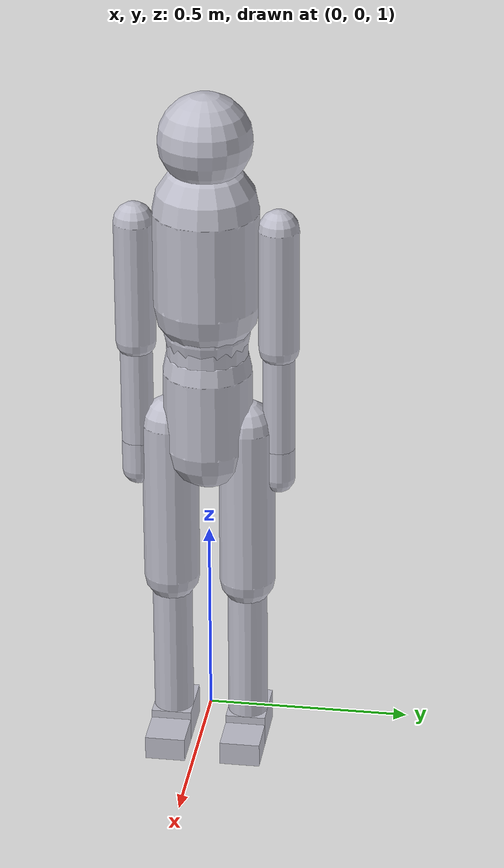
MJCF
<mujoco model="mma_humanoid_base">

  <compiler angle="degree" autolimits="true" inertiafromgeom="true"/>
  <option timestep="0.002083" gravity="0 0 -9.81" iterations="50" solver="Newton"/>

  <default>
    <default class="mma_humanoid">
      <joint damping="15" armature="0.02" limited="true" frictionloss="0.5"/>
      <!-- contype=2 conaffinity=3 → collides with world (bit 0) and self (bit 1) -->
      <geom contype="2" conaffinity="3" condim="4" friction="0.8 0.01 0.001" rgba="0.75 0.75 0.8 1"/>
      <site group="4" size="0.025" rgba="0 1 0 0.4"/>
    </default>
    <default class="strike_site">
      <site group="3" size="0.04" rgba="1 0.1 0.1 0.6"/>
    </default>
    <default class="grip_site">
      <site group="4" size="0.03" rgba="0.1 0.6 1 0.6"/>
    </default>
  </default>

  <worldbody>

    <body name="torso_lower" pos="0 0 1.84">
      <freejoint name="root"/>

      <!-- Pelvis + abdomen: mass ~22.4 kg (28% BM), capsule along local Z -->
      <geom name="pelvis" class="mma_humanoid" type="capsule"
            size="0.11 0.10" euler="0 0 0" mass="22.4"/>

      <!-- ── Spine chain: each joint on its own body ──────────────────────── -->
      <body name="torso_mid" pos="0 0 0.13">
        <!-- spine_twist: axial rotation — 28th DOF -->
        <joint name="spine_twist" type="hinge" axis="0 0 1" range="-30 30"
               damping="25" class="mma_humanoid"/>
        <!-- spine_lower: lateral bend -->
        <joint name="spine_lower" type="hinge" axis="0 1 0" range="-30 30"
               damping="25" class="mma_humanoid"/>
        <!-- structural link — mass consolidated into pelvis/thorax -->
        <geom name="abdomen" class="mma_humanoid" type="capsule"
              size="0.10 0.06" euler="0 0 0" mass="0.5"/>

        <body name="torso_upper_mid" pos="0 0 0.13">
          <!-- spine_mid: forward/back flex -->
          <joint name="spine_mid" type="hinge" axis="1 0 0" range="-25 25"
                 damping="20" class="mma_humanoid"/>
          <!-- structural link — mass consolidated into pelvis/thorax -->
          <geom name="lower_chest" class="mma_humanoid" type="capsule"
                size="0.105 0.06" euler="0 0 0" mass="0.5"/>

          <!-- ── Upper Torso (Thorax) ──────────────────────────────────────── -->
          <body name="torso_upper" pos="0 0 0.14">
            <!-- spine_upper: subtle rotation assist -->
            <joint name="spine_upper" type="hinge" axis="0 0 1" range="-20 20"
                   damping="15" class="mma_humanoid"/>
            <!-- Thorax: absorbs mass from structural abdomen/lower_chest links → 18.0 kg -->
            <geom name="thorax" class="mma_humanoid" type="capsule"
                  size="0.13 0.12" euler="0 0 0" mass="18.0"/>

            <site name="site_solar_plexus" pos="0 0.14 -0.05" class="strike_site"/>
            <site name="site_liver"        pos="-0.09 0.10 -0.05" class="strike_site"/>

            <!-- ── Neck chain ──────────────────────────────────────────────── -->
            <body name="neck" pos="0 0 0.20">
              <joint name="neck_pan" type="hinge" axis="0 0 1" range="-70 70"
                     damping="8" class="mma_humanoid"/>
              <!-- Neck: mass ~1.2 kg -->
              <geom name="neck_geom" class="mma_humanoid" type="capsule"
                    size="0.05 0.04" euler="0 0 0" mass="1.2"/>

              <body name="head" pos="0 0 0.10">
                <joint name="neck_tilt"    type="hinge" axis="1 0 0" range="-40 45"
                       damping="8" class="mma_humanoid"/>
                <!-- lateral flex: ear-to-shoulder, essential for slipping punches -->
                <joint name="neck_lateral" type="hinge" axis="0 1 0" range="-30 30"
                       damping="8" class="mma_humanoid"/>
                <!-- Head: mass ~6.4 kg (8% BM), sphere r=0.115 -->
                <geom name="head_geom" class="mma_humanoid" type="sphere"
                      size="0.115" mass="6.4"/>
                <site name="site_head"     pos="0 0 0"         class="strike_site"/>
                <site name="site_jaw"      pos="0 0.10 -0.07"  class="strike_site"/>
                <site name="site_temple_L" pos="-0.10 0 0.02"  class="strike_site"/>
                <site name="site_temple_R" pos="0.10 0 0.02"   class="strike_site"/>
              </body>
            </body>

            <body name="upper_arm_L" pos="0 0.175 0.08">
              <joint name="shoulder_x_L" type="hinge" axis="1 0 0" range="-180 60"
                     damping="10" class="mma_humanoid"/>
              <joint name="shoulder_y_L" type="hinge" axis="0 1 0" range="-90 135"
                     damping="10" class="mma_humanoid"/>
              <joint name="shoulder_z_L" type="hinge" axis="0 0 1" range="-90 90"
                     damping="8"  class="mma_humanoid"/>
              <!-- Capsule along +Y (arm hangs down in anatomical neutral) -->
              <geom name="upper_arm_geom_L" class="mma_humanoid" type="capsule"
                    size="0.05 0.155" fromto="0 0 0  0 0 -0.31" mass="1.96"/>

              <body name="forearm_L" pos="0 0 -0.31">
                <joint name="elbow_flexion_L" type="hinge" axis="1 0 0" range="0 145"
                       damping="8" class="mma_humanoid"/>
                <!-- pronation/supination: knuckle-over at punch impact -->
                <joint name="forearm_twist_L" type="hinge" axis="0 0 1" range="-90 90"
                       damping="5" class="mma_humanoid"/>
                <geom name="forearm_geom_L" class="mma_humanoid" type="capsule"
                      size="0.04 0.135" fromto="0 0 0  0 0 -0.27" mass="1.28"/>

                <body name="hand_L" pos="0 0 -0.27">
                  <joint name="wrist_x_L" type="hinge" axis="1 0 0" range="-70 70"
                         damping="5" class="mma_humanoid"/>
                  <geom name="hand_geom_L" class="mma_humanoid" type="capsule"
                        size="0.04 0.04" fromto="0 0 0  0 0 -0.08" mass="0.48"/>
                  <site name="site_hand_L" pos="0 0 -0.06" class="grip_site"/>
                </body>
              </body>
            </body>

            <!-- ══════════════════════════════════════════════════════════════
                 RIGHT ARM  (-Y side)
            ══════════════════════════════════════════════════════════════ -->
            <body name="upper_arm_R" pos="0 -0.175 0.08">
              <joint name="shoulder_x_R" type="hinge" axis="1 0 0" range="-180 60"
                     damping="10" class="mma_humanoid"/>
              <joint name="shoulder_y_R" type="hinge" axis="0 1 0" range="-135 90"
                     damping="10" class="mma_humanoid"/>
              <joint name="shoulder_z_R" type="hinge" axis="0 0 1" range="-90 90"
                     damping="8"  class="mma_humanoid"/>
              <geom name="upper_arm_geom_R" class="mma_humanoid" type="capsule"
                    size="0.05 0.155" fromto="0 0 0  0 0 -0.31" mass="1.96"/>

              <body name="forearm_R" pos="0 0 -0.31">
                <joint name="elbow_flexion_R" type="hinge" axis="1 0 0" range="0 145"
                       damping="8" class="mma_humanoid"/>
                <joint name="forearm_twist_R" type="hinge" axis="0 0 1" range="-90 90"
                       damping="5" class="mma_humanoid"/>
                <geom name="forearm_geom_R" class="mma_humanoid" type="capsule"
                      size="0.04 0.135" fromto="0 0 0  0 0 -0.27" mass="1.28"/>

                <body name="hand_R" pos="0 0 -0.27">
                  <joint name="wrist_x_R" type="hinge" axis="1 0 0" range="-70 70"
                         damping="5" class="mma_humanoid"/>
                  <geom name="hand_geom_R" class="mma_humanoid" type="capsule"
                        size="0.04 0.04" fromto="0 0 0  0 0 -0.08" mass="0.48"/>
                  <site name="site_hand_R" pos="0 0 -0.06" class="grip_site"/>
                </body>
              </body>
            </body>

          </body> <!-- torso_upper -->
        </body> <!-- torso_upper_mid -->
      </body> <!-- torso_mid -->

      <body name="thigh_L" pos="0 0.095 -0.05">
        <joint name="hip_x_L" type="hinge" axis="1 0 0" range="-30 120"
               damping="20" class="mma_humanoid"/>
        <joint name="hip_y_L" type="hinge" axis="0 1 0" range="-45 45"
               damping="20" class="mma_humanoid"/>
        <joint name="hip_z_L" type="hinge" axis="0 0 1" range="-45 45"
               damping="15" class="mma_humanoid"/>
        <geom name="thigh_geom_L" class="mma_humanoid" type="capsule"
              size="0.07 0.21" fromto="0 0 0  0 0 -0.42" mass="7.20"/>
        <site name="site_thigh_L" pos="0 0 -0.21" class="strike_site"/>

        <body name="shank_L" pos="0 0 -0.42">
          <joint name="knee_flexion_L" type="hinge" axis="1 0 0" range="0 140"
                 damping="15" class="mma_humanoid"/>
          <geom name="shank_geom_L" class="mma_humanoid" type="capsule"
                size="0.05 0.20" fromto="0 0 0  0 0 -0.40" mass="3.44"/>
          <site name="site_calf_L" pos="0 0 -0.20" class="strike_site"/>

          <!-- foot body at -0.38 (not -0.40): ankle joint sits 0.02 m inside shin capsule,
               closing the visual gap without changing canvas contact height. -->
          <body name="foot_L" pos="0 0 -0.38">
            <joint name="ankle_x_L" type="hinge" axis="1 0 0" range="-50 20"
                   damping="10" class="mma_humanoid"/>
            <joint name="ankle_y_L" type="hinge" axis="0 1 0" range="-30 30"
                   damping="8"  class="mma_humanoid"/>
            <geom name="heel_geom_L" class="mma_humanoid" type="box"
                  size="0.07 0.05 0.04" pos="-0.02 0 -0.04" mass="0.82"/>
            <site name="site_heel_L" pos="-0.07 0 -0.08"/>
            <body name="toes_L" pos="0.06 0 -0.04">
              <joint name="toe_flex_L" type="hinge" axis="0 1 0" range="-20 45"
                     damping="4" class="mma_humanoid"/>
              <geom name="toe_geom_L" class="mma_humanoid" type="box"
                    size="0.05 0.05 0.03" pos="0.04 0 -0.01" mass="0.30"/>
              <site name="site_toe_L" pos="0.05 0 -0.04"/>
            </body>
          </body>
        </body>
      </body>

      <!-- ════════════════════════════════════════════════════════════════════
           RIGHT LEG  (-Y side of pelvis)
      ════════════════════════════════════════════════════════════════════ -->
      <body name="thigh_R" pos="0 -0.095 -0.05">
        <joint name="hip_x_R" type="hinge" axis="1 0 0" range="-30 120"
               damping="20" class="mma_humanoid"/>
        <joint name="hip_y_R" type="hinge" axis="0 1 0" range="-45 45"
               damping="20" class="mma_humanoid"/>
        <joint name="hip_z_R" type="hinge" axis="0 0 1" range="-45 45"
               damping="15" class="mma_humanoid"/>
        <geom name="thigh_geom_R" class="mma_humanoid" type="capsule"
              size="0.07 0.21" fromto="0 0 0  0 0 -0.42" mass="7.20"/>
        <site name="site_thigh_R" pos="0 0 -0.21" class="strike_site"/>

        <body name="shank_R" pos="0 0 -0.42">
          <joint name="knee_flexion_R" type="hinge" axis="1 0 0" range="0 140"
                 damping="15" class="mma_humanoid"/>
          <geom name="shank_geom_R" class="mma_humanoid" type="capsule"
                size="0.05 0.20" fromto="0 0 0  0 0 -0.40" mass="3.44"/>
          <site name="site_calf_R" pos="0 0 -0.20" class="strike_site"/>

          <body name="foot_R" pos="0 0 -0.38">
            <joint name="ankle_x_R" type="hinge" axis="1 0 0" range="-50 20"
                   damping="10" class="mma_humanoid"/>
            <joint name="ankle_y_R" type="hinge" axis="0 1 0" range="-30 30"
                   damping="8"  class="mma_humanoid"/>
            <geom name="heel_geom_R" class="mma_humanoid" type="box"
                  size="0.07 0.05 0.04" pos="-0.02 0 -0.04" mass="0.82"/>
            <site name="site_heel_R" pos="-0.07 0 -0.08"/>
            <body name="toes_R" pos="0.06 0 -0.04">
              <joint name="toe_flex_R" type="hinge" axis="0 1 0" range="-20 45"
                     damping="4" class="mma_humanoid"/>
              <geom name="toe_geom_R" class="mma_humanoid" type="box"
                    size="0.05 0.05 0.03" pos="0.04 0 -0.01" mass="0.30"/>
              <site name="site_toe_R" pos="0.05 0 -0.04"/>
            </body>
          </body>
        </body>
      </body>

    </body> <!-- torso_lower / root -->
  </worldbody>

  <contact>
    <exclude body1="torso_lower"    body2="torso_mid"/>
    <exclude body1="torso_mid"      body2="torso_upper_mid"/>
    <exclude body1="torso_upper_mid" body2="torso_upper"/>
    <exclude body1="torso_upper"    body2="neck"/>
    <exclude body1="neck"           body2="head"/>
    <exclude body1="torso_upper"    body2="upper_arm_L"/>
    <exclude body1="upper_arm_L"    body2="forearm_L"/>
    <exclude body1="forearm_L"      body2="hand_L"/>
    <exclude body1="torso_upper"    body2="upper_arm_R"/>
    <exclude body1="upper_arm_R"    body2="forearm_R"/>
    <exclude body1="forearm_R"      body2="hand_R"/>
    <exclude body1="torso_lower"    body2="thigh_L"/>
    <exclude body1="thigh_L"        body2="shank_L"/>
    <exclude body1="shank_L"        body2="foot_L"/>
    <exclude body1="foot_L"         body2="toes_L"/>
    <exclude body1="torso_lower"    body2="thigh_R"/>
    <exclude body1="thigh_R"        body2="shank_R"/>
    <exclude body1="shank_R"        body2="foot_R"/>
    <exclude body1="foot_R"         body2="toes_R"/>
  </contact>

  <actuator>
    <!-- Spine & neck (5 + spine_twist = 6 but spine_twist is 28th DOF) -->
    <position name="act_spine_twist"   joint="spine_twist"   kp="300"  forcerange="-80  80"/>
    <position name="act_spine_lower"   joint="spine_lower"   kp="400"  forcerange="-160 160"/>
    <position name="act_spine_mid"     joint="spine_mid"     kp="400"  forcerange="-130 130"/>
    <position name="act_spine_upper"   joint="spine_upper"   kp="350"  forcerange="-100 100"/>
    <position name="act_neck_pan"      joint="neck_pan"      kp="100"  forcerange="-30  30"/>
    <position name="act_neck_tilt"     joint="neck_tilt"     kp="100"  forcerange="-25  25"/>
    <position name="act_neck_lateral"  joint="neck_lateral"  kp="80"   forcerange="-20  20"/>

    <!-- Left arm -->
    <position name="act_shoulder_x_L"  joint="shoulder_x_L"  kp="250"  forcerange="-100 100"/>
    <position name="act_shoulder_y_L"  joint="shoulder_y_L"  kp="250"  forcerange="-80  80"/>
    <position name="act_shoulder_z_L"  joint="shoulder_z_L"  kp="200"  forcerange="-50  50"/>
    <position name="act_elbow_L"          joint="elbow_flexion_L"  kp="200" forcerange="-70  70"/>
    <position name="act_forearm_twist_L"  joint="forearm_twist_L"  kp="60"  forcerange="-20  20"/>
    <position name="act_wrist_x_L"        joint="wrist_x_L"        kp="80"  forcerange="-25  25"/>

    <!-- Right arm -->
    <position name="act_shoulder_x_R"  joint="shoulder_x_R"  kp="250"  forcerange="-100 100"/>
    <position name="act_shoulder_y_R"  joint="shoulder_y_R"  kp="250"  forcerange="-80  80"/>
    <position name="act_shoulder_z_R"  joint="shoulder_z_R"  kp="200"  forcerange="-50  50"/>
    <position name="act_elbow_R"          joint="elbow_flexion_R"  kp="200" forcerange="-70  70"/>
    <position name="act_forearm_twist_R"  joint="forearm_twist_R"  kp="60"  forcerange="-20  20"/>
    <position name="act_wrist_x_R"        joint="wrist_x_R"        kp="80"  forcerange="-25  25"/>

    <!-- Left leg -->
    <position name="act_hip_x_L"       joint="hip_x_L"       kp="800"  forcerange="-220 220"/>
    <position name="act_hip_y_L"       joint="hip_y_L"       kp="700"  forcerange="-140 140"/>
    <position name="act_hip_z_L"       joint="hip_z_L"       kp="500"  forcerange="-80  80"/>
    <position name="act_knee_L"        joint="knee_flexion_L" kp="700"  forcerange="-170 170"/>
    <position name="act_ankle_x_L"     joint="ankle_x_L"     kp="400"  forcerange="-120 120"/>
    <position name="act_ankle_y_L"     joint="ankle_y_L"     kp="250"  forcerange="-50  50"/>
    <position name="act_toe_flex_L"    joint="toe_flex_L"    kp="50"   forcerange="-15  15"/>

    <!-- Right leg -->
    <position name="act_hip_x_R"       joint="hip_x_R"       kp="800"  forcerange="-220 220"/>
    <position name="act_hip_y_R"       joint="hip_y_R"       kp="700"  forcerange="-140 140"/>
    <position name="act_hip_z_R"       joint="hip_z_R"       kp="500"  forcerange="-80  80"/>
    <position name="act_knee_R"        joint="knee_flexion_R" kp="700"  forcerange="-170 170"/>
    <position name="act_ankle_x_R"     joint="ankle_x_R"     kp="400"  forcerange="-120 120"/>
    <position name="act_ankle_y_R"     joint="ankle_y_R"     kp="250"  forcerange="-50  50"/>
    <position name="act_toe_flex_R"    joint="toe_flex_R"    kp="50"   forcerange="-15  15"/>
  </actuator>

  <sensor>
    <touch name="touch_heel_L"  site="site_heel_L"/>
    <touch name="touch_toe_L"   site="site_toe_L"/>
    <touch name="touch_heel_R"  site="site_heel_R"/>
    <touch name="touch_toe_R"   site="site_toe_R"/>

    <framelinvel name="root_linvel" objtype="body" objname="torso_lower"/>
    <frameangvel name="root_angvel" objtype="body" objname="torso_lower"/>
    <framequat   name="root_quat"   objtype="body" objname="torso_lower"/>
  </sensor>

  <keyframe>
    <key name="stand"
         qpos="0 0 1.84  1 0 0 0  0 0 0 0 0 0 0 0 0 0 0 0 0 0 0 0 0 0 0 0 0 0 0 0 0 0 0 0 0 0 0 0 0"/>
  </keyframe>

</mujoco>
